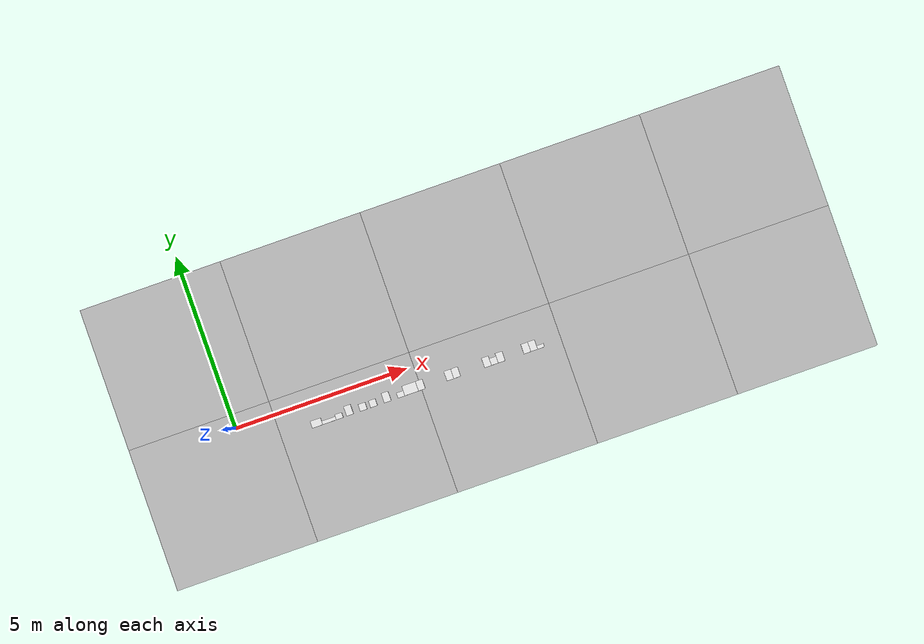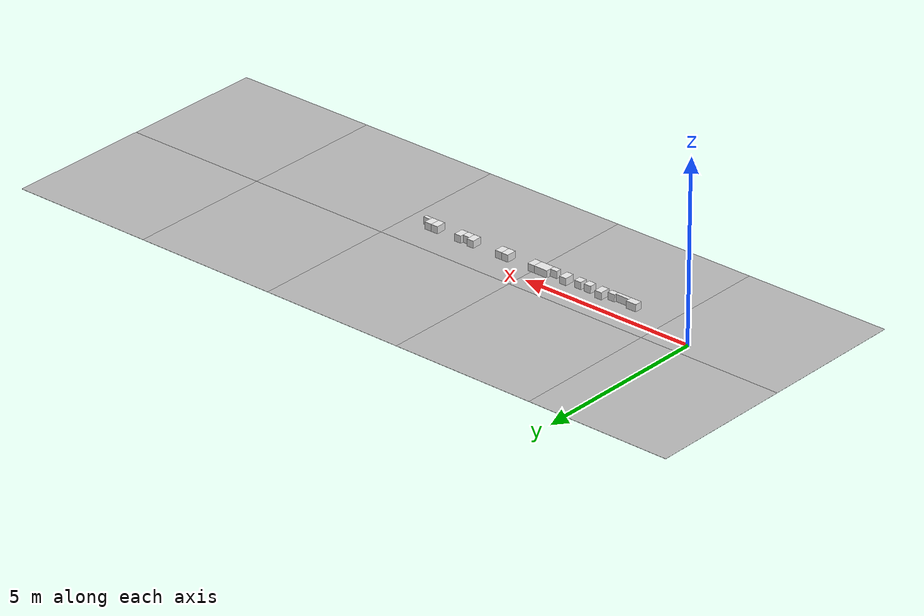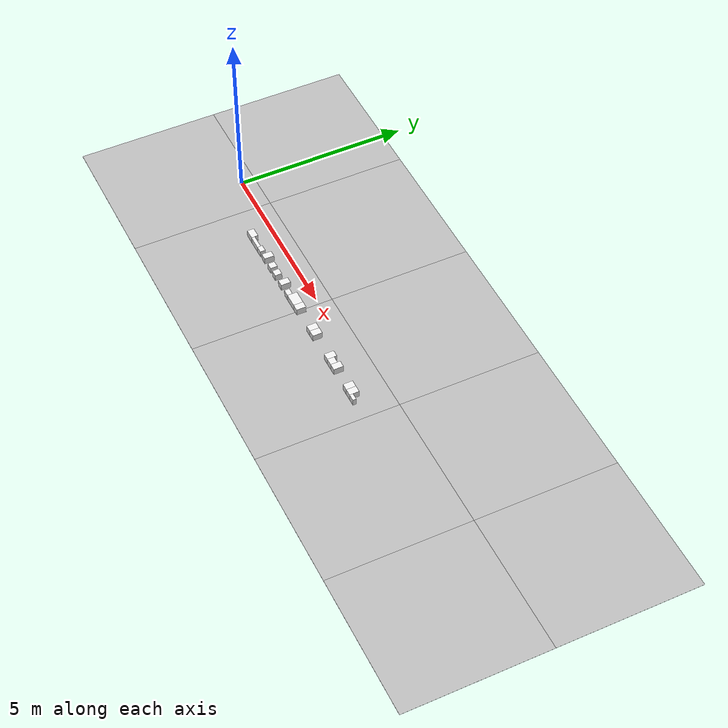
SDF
<sdf version='1.6'><world name='default'>
    <light name='sun_light' type='directional'>
      <pose frame=''>0 0 10 0 -0 0</pose>
      <diffuse>0.5 0.5 0.5 1</diffuse>
      <specular>0.1 0.1 0.1 1</specular>
      <direction>0.1 0.1 -0.9</direction>
      <attenuation>
        <range>20</range>
        <constant>0.5</constant>
        <linear>0.01</linear>
        <quadratic>0.001</quadratic>
      </attenuation>
      <cast_shadows>1</cast_shadows>
    </light>

    <model name='Tile/0-0'>
      <static>1</static>
      <link name='link'>
        <collision name='collision'>
          <geometry>
            <plane>
              <normal>0 0 1</normal>
              <size>4.096 4.096</size>
            </plane>
          </geometry>
          <surface>
            <friction>
              <ode>
                <mu>100</mu>
                <mu2>50</mu2>
              </ode>
              <torsional>
                <ode/>
              </torsional>
            </friction>
            <contact>
              <ode/>
            </contact>
            <bounce/>
          </surface>
          <max_contacts>10</max_contacts>
        </collision>
        <visual name='visual'>
          <cast_shadows>0</cast_shadows>
          <geometry>
            <plane>
              <normal>0 0 1</normal>
              <size>4.096 4.096</size>
            </plane>
          </geometry>
          <material>
            <script>
              <uri>file://materials/scripts</uri>
              <uri>file://materials/textures</uri>
              <name>Tile/aa44efc093d15b0d016b671cb8dad8b9b5925cd42bc6b331ef31decf4ba6863e</name>
            </script>
          </material>
        </visual>
        <self_collide>0</self_collide>
        <enable_wind>0</enable_wind>
        <kinematic>0</kinematic>
      </link>
      <pose frame=''>-0.952 -1.6520000000000001 0 0 -0 0</pose>
    </model>

    <model name='Tile/0-1'>
      <static>1</static>
      <link name='link'>
        <collision name='collision'>
          <geometry>
            <plane>
              <normal>0 0 1</normal>
              <size>4.096 4.096</size>
            </plane>
          </geometry>
          <surface>
            <friction>
              <ode>
                <mu>100</mu>
                <mu2>50</mu2>
              </ode>
              <torsional>
                <ode/>
              </torsional>
            </friction>
            <contact>
              <ode/>
            </contact>
            <bounce/>
          </surface>
          <max_contacts>10</max_contacts>
        </collision>
        <visual name='visual'>
          <cast_shadows>0</cast_shadows>
          <geometry>
            <plane>
              <normal>0 0 1</normal>
              <size>4.096 4.096</size>
            </plane>
          </geometry>
          <material>
            <script>
              <uri>file://materials/scripts</uri>
              <uri>file://materials/textures</uri>
              <name>Tile/6681b896b1587d54cb69aadeb5fb7247b4d6d500490292053e67105ac88ca889</name>
            </script>
          </material>
        </visual>
        <self_collide>0</self_collide>
        <enable_wind>0</enable_wind>
        <kinematic>0</kinematic>
      </link>
      <pose frame=''>-0.952 2.444 0 0 -0 0</pose>
    </model>

    <model name='Tile/1-0'>
      <static>1</static>
      <link name='link'>
        <collision name='collision'>
          <geometry>
            <plane>
              <normal>0 0 1</normal>
              <size>4.096 4.096</size>
            </plane>
          </geometry>
          <surface>
            <friction>
              <ode>
                <mu>100</mu>
                <mu2>50</mu2>
              </ode>
              <torsional>
                <ode/>
              </torsional>
            </friction>
            <contact>
              <ode/>
            </contact>
            <bounce/>
          </surface>
          <max_contacts>10</max_contacts>
        </collision>
        <visual name='visual'>
          <cast_shadows>0</cast_shadows>
          <geometry>
            <plane>
              <normal>0 0 1</normal>
              <size>4.096 4.096</size>
            </plane>
          </geometry>
          <material>
            <script>
              <uri>file://materials/scripts</uri>
              <uri>file://materials/textures</uri>
              <name>Tile/5519df0843ca2edcb0d4cc3d9bbf92a1ead79cd6f2c310dce87ee613d5277f1f</name>
            </script>
          </material>
        </visual>
        <self_collide>0</self_collide>
        <enable_wind>0</enable_wind>
        <kinematic>0</kinematic>
      </link>
      <pose frame=''>3.144 -1.6520000000000001 0 0 -0 0</pose>
    </model>

    <model name='Tile/1-1'>
      <static>1</static>
      <link name='link'>
        <collision name='collision'>
          <geometry>
            <plane>
              <normal>0 0 1</normal>
              <size>4.096 4.096</size>
            </plane>
          </geometry>
          <surface>
            <friction>
              <ode>
                <mu>100</mu>
                <mu2>50</mu2>
              </ode>
              <torsional>
                <ode/>
              </torsional>
            </friction>
            <contact>
              <ode/>
            </contact>
            <bounce/>
          </surface>
          <max_contacts>10</max_contacts>
        </collision>
        <visual name='visual'>
          <cast_shadows>0</cast_shadows>
          <geometry>
            <plane>
              <normal>0 0 1</normal>
              <size>4.096 4.096</size>
            </plane>
          </geometry>
          <material>
            <script>
              <uri>file://materials/scripts</uri>
              <uri>file://materials/textures</uri>
              <name>Tile/13957a6de1f2afce18d7f1f64dacc2f21295e26ccf498256b0e1a51002cd5706</name>
            </script>
          </material>
        </visual>
        <self_collide>0</self_collide>
        <enable_wind>0</enable_wind>
        <kinematic>0</kinematic>
      </link>
      <pose frame=''>3.144 2.444 0 0 -0 0</pose>
    </model>

    <model name='Tile/2-0'>
      <static>1</static>
      <link name='link'>
        <collision name='collision'>
          <geometry>
            <plane>
              <normal>0 0 1</normal>
              <size>4.096 4.096</size>
            </plane>
          </geometry>
          <surface>
            <friction>
              <ode>
                <mu>100</mu>
                <mu2>50</mu2>
              </ode>
              <torsional>
                <ode/>
              </torsional>
            </friction>
            <contact>
              <ode/>
            </contact>
            <bounce/>
          </surface>
          <max_contacts>10</max_contacts>
        </collision>
        <visual name='visual'>
          <cast_shadows>0</cast_shadows>
          <geometry>
            <plane>
              <normal>0 0 1</normal>
              <size>4.096 4.096</size>
            </plane>
          </geometry>
          <material>
            <script>
              <uri>file://materials/scripts</uri>
              <uri>file://materials/textures</uri>
              <name>Tile/8542aadd5de015428e820a9ee0e6fe3bbdfcf93ec4a8acf17711a93bd742b243</name>
            </script>
          </material>
        </visual>
        <self_collide>0</self_collide>
        <enable_wind>0</enable_wind>
        <kinematic>0</kinematic>
      </link>
      <pose frame=''>7.24 -1.6520000000000001 0 0 -0 0</pose>
    </model>

    <model name='Tile/2-1'>
      <static>1</static>
      <link name='link'>
        <collision name='collision'>
          <geometry>
            <plane>
              <normal>0 0 1</normal>
              <size>4.096 4.096</size>
            </plane>
          </geometry>
          <surface>
            <friction>
              <ode>
                <mu>100</mu>
                <mu2>50</mu2>
              </ode>
              <torsional>
                <ode/>
              </torsional>
            </friction>
            <contact>
              <ode/>
            </contact>
            <bounce/>
          </surface>
          <max_contacts>10</max_contacts>
        </collision>
        <visual name='visual'>
          <cast_shadows>0</cast_shadows>
          <geometry>
            <plane>
              <normal>0 0 1</normal>
              <size>4.096 4.096</size>
            </plane>
          </geometry>
          <material>
            <script>
              <uri>file://materials/scripts</uri>
              <uri>file://materials/textures</uri>
              <name>Tile/13957a6de1f2afce18d7f1f64dacc2f21295e26ccf498256b0e1a51002cd5706</name>
            </script>
          </material>
        </visual>
        <self_collide>0</self_collide>
        <enable_wind>0</enable_wind>
        <kinematic>0</kinematic>
      </link>
      <pose frame=''>7.24 2.444 0 0 -0 0</pose>
    </model>

    <model name='Tile/3-0'>
      <static>1</static>
      <link name='link'>
        <collision name='collision'>
          <geometry>
            <plane>
              <normal>0 0 1</normal>
              <size>4.096 4.096</size>
            </plane>
          </geometry>
          <surface>
            <friction>
              <ode>
                <mu>100</mu>
                <mu2>50</mu2>
              </ode>
              <torsional>
                <ode/>
              </torsional>
            </friction>
            <contact>
              <ode/>
            </contact>
            <bounce/>
          </surface>
          <max_contacts>10</max_contacts>
        </collision>
        <visual name='visual'>
          <cast_shadows>0</cast_shadows>
          <geometry>
            <plane>
              <normal>0 0 1</normal>
              <size>4.096 4.096</size>
            </plane>
          </geometry>
          <material>
            <script>
              <uri>file://materials/scripts</uri>
              <uri>file://materials/textures</uri>
              <name>Tile/abe61641e72e42510ec0c33382329821aa0ffdabd8bdd301795f6aacd2568930</name>
            </script>
          </material>
        </visual>
        <self_collide>0</self_collide>
        <enable_wind>0</enable_wind>
        <kinematic>0</kinematic>
      </link>
      <pose frame=''>11.336 -1.6520000000000001 0 0 -0 0</pose>
    </model>

    <model name='Tile/3-1'>
      <static>1</static>
      <link name='link'>
        <collision name='collision'>
          <geometry>
            <plane>
              <normal>0 0 1</normal>
              <size>4.096 4.096</size>
            </plane>
          </geometry>
          <surface>
            <friction>
              <ode>
                <mu>100</mu>
                <mu2>50</mu2>
              </ode>
              <torsional>
                <ode/>
              </torsional>
            </friction>
            <contact>
              <ode/>
            </contact>
            <bounce/>
          </surface>
          <max_contacts>10</max_contacts>
        </collision>
        <visual name='visual'>
          <cast_shadows>0</cast_shadows>
          <geometry>
            <plane>
              <normal>0 0 1</normal>
              <size>4.096 4.096</size>
            </plane>
          </geometry>
          <material>
            <script>
              <uri>file://materials/scripts</uri>
              <uri>file://materials/textures</uri>
              <name>Tile/9a638098c074a6a28d2b802bd76e24a7c94687fec106f022fc197313878202a5</name>
            </script>
          </material>
        </visual>
        <self_collide>0</self_collide>
        <enable_wind>0</enable_wind>
        <kinematic>0</kinematic>
      </link>
      <pose frame=''>11.336 2.444 0 0 -0 0</pose>
    </model>

    <model name='Tile/4-0'>
      <static>1</static>
      <link name='link'>
        <collision name='collision'>
          <geometry>
            <plane>
              <normal>0 0 1</normal>
              <size>4.096 4.096</size>
            </plane>
          </geometry>
          <surface>
            <friction>
              <ode>
                <mu>100</mu>
                <mu2>50</mu2>
              </ode>
              <torsional>
                <ode/>
              </torsional>
            </friction>
            <contact>
              <ode/>
            </contact>
            <bounce/>
          </surface>
          <max_contacts>10</max_contacts>
        </collision>
        <visual name='visual'>
          <cast_shadows>0</cast_shadows>
          <geometry>
            <plane>
              <normal>0 0 1</normal>
              <size>4.096 4.096</size>
            </plane>
          </geometry>
          <material>
            <script>
              <uri>file://materials/scripts</uri>
              <uri>file://materials/textures</uri>
              <name>Tile/5eab350b8220ac9944dbdfa4ac3288c7c17e24c3bf5df0dfcf6173d64dae00a1</name>
            </script>
          </material>
        </visual>
        <self_collide>0</self_collide>
        <enable_wind>0</enable_wind>
        <kinematic>0</kinematic>
      </link>
      <pose frame=''>15.431999999999999 -1.6520000000000001 0 0 -0 0</pose>
    </model>

    <model name='Tile/4-1'>
      <static>1</static>
      <link name='link'>
        <collision name='collision'>
          <geometry>
            <plane>
              <normal>0 0 1</normal>
              <size>4.096 4.096</size>
            </plane>
          </geometry>
          <surface>
            <friction>
              <ode>
                <mu>100</mu>
                <mu2>50</mu2>
              </ode>
              <torsional>
                <ode/>
              </torsional>
            </friction>
            <contact>
              <ode/>
            </contact>
            <bounce/>
          </surface>
          <max_contacts>10</max_contacts>
        </collision>
        <visual name='visual'>
          <cast_shadows>0</cast_shadows>
          <geometry>
            <plane>
              <normal>0 0 1</normal>
              <size>4.096 4.096</size>
            </plane>
          </geometry>
          <material>
            <script>
              <uri>file://materials/scripts</uri>
              <uri>file://materials/textures</uri>
              <name>Tile/5eab350b8220ac9944dbdfa4ac3288c7c17e24c3bf5df0dfcf6173d64dae00a1</name>
            </script>
          </material>
        </visual>
        <self_collide>0</self_collide>
        <enable_wind>0</enable_wind>
        <kinematic>0</kinematic>
      </link>
      <pose frame=''>15.431999999999999 2.444 0 0 -0 0</pose>
    </model>

    <model name='Obstacle/-5/0'>
      <pose frame=''>2.15 -0.6 0.1 0 0 -0.0</pose>
      <link name='link'>
        <inertial>
          <mass>10</mass>
          <inertia>
            <ixx>0.166667</ixx>
            <ixy>0</ixy>
            <ixz>0</ixz>
            <iyy>0.166667</iyy>
            <iyz>0</iyz>
            <izz>0.166667</izz>
          </inertia>
        </inertial>
        <collision name='collision'>
          <geometry>
            <box>
              <size>0.3 0.2 0.2</size>
            </box>
          </geometry>
          <max_contacts>10</max_contacts>
          <surface>
            <contact>
              <ode/>
            </contact>
            <bounce/>
            <friction>
              <torsional>
                <ode/>
              </torsional>
              <ode/>
            </friction>
          </surface>
        </collision>
        <visual name='visual'>
          <geometry>
            <box>
              <size>0.3 0.2 0.2</size>
            </box>
          </geometry>
          <material>
            <script>
              <name>Gazebo/White</name>
              <uri>file://media/materials/scripts/gazebo.material</uri>
            </script>
          </material>
        </visual>
        <self_collide>0</self_collide>
        <enable_wind>0</enable_wind>
        <kinematic>0</kinematic>
      </link>
    </model>

    <model name='Obstacle/-9/0'>
      <pose frame=''>2.5 -0.6499999999999999 0.1 0 0 -0.0</pose>
      <link name='link'>
        <inertial>
          <mass>10</mass>
          <inertia>
            <ixx>0.166667</ixx>
            <ixy>0</ixy>
            <ixz>0</ixz>
            <iyy>0.166667</iyy>
            <iyz>0</iyz>
            <izz>0.166667</izz>
          </inertia>
        </inertial>
        <collision name='collision'>
          <geometry>
            <box>
              <size>0.4 0.1 0.2</size>
            </box>
          </geometry>
          <max_contacts>10</max_contacts>
          <surface>
            <contact>
              <ode/>
            </contact>
            <bounce/>
            <friction>
              <torsional>
                <ode/>
              </torsional>
              <ode/>
            </friction>
          </surface>
        </collision>
        <visual name='visual'>
          <geometry>
            <box>
              <size>0.4 0.1 0.2</size>
            </box>
          </geometry>
          <material>
            <script>
              <name>Gazebo/White</name>
              <uri>file://media/materials/scripts/gazebo.material</uri>
            </script>
          </material>
        </visual>
        <self_collide>0</self_collide>
        <enable_wind>0</enable_wind>
        <kinematic>0</kinematic>
      </link>
    </model>

    <model name='Obstacle/-13/0'>
      <pose frame=''>2.8 -0.625 0.1 0 0 -0.0</pose>
      <link name='link'>
        <inertial>
          <mass>10</mass>
          <inertia>
            <ixx>0.166667</ixx>
            <ixy>0</ixy>
            <ixz>0</ixz>
            <iyy>0.166667</iyy>
            <iyz>0</iyz>
            <izz>0.166667</izz>
          </inertia>
        </inertial>
        <collision name='collision'>
          <geometry>
            <box>
              <size>0.2 0.15 0.2</size>
            </box>
          </geometry>
          <max_contacts>10</max_contacts>
          <surface>
            <contact>
              <ode/>
            </contact>
            <bounce/>
            <friction>
              <torsional>
                <ode/>
              </torsional>
              <ode/>
            </friction>
          </surface>
        </collision>
        <visual name='visual'>
          <geometry>
            <box>
              <size>0.2 0.15 0.2</size>
            </box>
          </geometry>
          <material>
            <script>
              <name>Gazebo/White</name>
              <uri>file://media/materials/scripts/gazebo.material</uri>
            </script>
          </material>
        </visual>
        <self_collide>0</self_collide>
        <enable_wind>0</enable_wind>
        <kinematic>0</kinematic>
      </link>
    </model>

    <model name='Obstacle/-20/0'>
      <pose frame=''>3.1 -0.5599999999999999 0.1 0 0 -0.0</pose>
      <link name='link'>
        <inertial>
          <mass>10</mass>
          <inertia>
            <ixx>0.166667</ixx>
            <ixy>0</ixy>
            <ixz>0</ixz>
            <iyy>0.166667</iyy>
            <iyz>0</iyz>
            <izz>0.166667</izz>
          </inertia>
        </inertial>
        <collision name='collision'>
          <geometry>
            <box>
              <size>0.2 0.28 0.2</size>
            </box>
          </geometry>
          <max_contacts>10</max_contacts>
          <surface>
            <contact>
              <ode/>
            </contact>
            <bounce/>
            <friction>
              <torsional>
                <ode/>
              </torsional>
              <ode/>
            </friction>
          </surface>
        </collision>
        <visual name='visual'>
          <geometry>
            <box>
              <size>0.2 0.28 0.2</size>
            </box>
          </geometry>
          <material>
            <script>
              <name>Gazebo/White</name>
              <uri>file://media/materials/scripts/gazebo.material</uri>
            </script>
          </material>
        </visual>
        <self_collide>0</self_collide>
        <enable_wind>0</enable_wind>
        <kinematic>0</kinematic>
      </link>
    </model>

    <model name='Obstacle/-27/0'>
      <pose frame=''>3.5000000000000004 -0.6 0.1 0 0 -0.0</pose>
      <link name='link'>
        <inertial>
          <mass>10</mass>
          <inertia>
            <ixx>0.166667</ixx>
            <ixy>0</ixy>
            <ixz>0</ixz>
            <iyy>0.166667</iyy>
            <iyz>0</iyz>
            <izz>0.166667</izz>
          </inertia>
        </inertial>
        <collision name='collision'>
          <geometry>
            <box>
              <size>0.2 0.2 0.2</size>
            </box>
          </geometry>
          <max_contacts>10</max_contacts>
          <surface>
            <contact>
              <ode/>
            </contact>
            <bounce/>
            <friction>
              <torsional>
                <ode/>
              </torsional>
              <ode/>
            </friction>
          </surface>
        </collision>
        <visual name='visual'>
          <geometry>
            <box>
              <size>0.2 0.2 0.2</size>
            </box>
          </geometry>
          <material>
            <script>
              <name>Gazebo/White</name>
              <uri>file://media/materials/scripts/gazebo.material</uri>
            </script>
          </material>
        </visual>
        <self_collide>0</self_collide>
        <enable_wind>0</enable_wind>
        <kinematic>0</kinematic>
      </link>
    </model>

    <model name='Obstacle/-34/0'>
      <pose frame=''>3.8000000000000007 -0.6 0.1 0 0 -0.0</pose>
      <link name='link'>
        <inertial>
          <mass>10</mass>
          <inertia>
            <ixx>0.166667</ixx>
            <ixy>0</ixy>
            <ixz>0</ixz>
            <iyy>0.166667</iyy>
            <iyz>0</iyz>
            <izz>0.166667</izz>
          </inertia>
        </inertial>
        <collision name='collision'>
          <geometry>
            <box>
              <size>0.2 0.2 0.2</size>
            </box>
          </geometry>
          <max_contacts>10</max_contacts>
          <surface>
            <contact>
              <ode/>
            </contact>
            <bounce/>
            <friction>
              <torsional>
                <ode/>
              </torsional>
              <ode/>
            </friction>
          </surface>
        </collision>
        <visual name='visual'>
          <geometry>
            <box>
              <size>0.2 0.2 0.2</size>
            </box>
          </geometry>
          <material>
            <script>
              <name>Gazebo/White</name>
              <uri>file://media/materials/scripts/gazebo.material</uri>
            </script>
          </material>
        </visual>
        <self_collide>0</self_collide>
        <enable_wind>0</enable_wind>
        <kinematic>0</kinematic>
      </link>
    </model>

    <model name='Obstacle/-41/0'>
      <pose frame=''>4.2 -0.5599999999999999 0.1 0 0 -0.0</pose>
      <link name='link'>
        <inertial>
          <mass>10</mass>
          <inertia>
            <ixx>0.166667</ixx>
            <ixy>0</ixy>
            <ixz>0</ixz>
            <iyy>0.166667</iyy>
            <iyz>0</iyz>
            <izz>0.166667</izz>
          </inertia>
        </inertial>
        <collision name='collision'>
          <geometry>
            <box>
              <size>0.2 0.28 0.2</size>
            </box>
          </geometry>
          <max_contacts>10</max_contacts>
          <surface>
            <contact>
              <ode/>
            </contact>
            <bounce/>
            <friction>
              <torsional>
                <ode/>
              </torsional>
              <ode/>
            </friction>
          </surface>
        </collision>
        <visual name='visual'>
          <geometry>
            <box>
              <size>0.2 0.28 0.2</size>
            </box>
          </geometry>
          <material>
            <script>
              <name>Gazebo/White</name>
              <uri>file://media/materials/scripts/gazebo.material</uri>
            </script>
          </material>
        </visual>
        <self_collide>0</self_collide>
        <enable_wind>0</enable_wind>
        <kinematic>0</kinematic>
      </link>
    </model>

    <model name='Obstacle/-48/0'>
      <pose frame=''>4.6000000000000005 -0.625 0.1 0 0 -0.0</pose>
      <link name='link'>
        <inertial>
          <mass>10</mass>
          <inertia>
            <ixx>0.166667</ixx>
            <ixy>0</ixy>
            <ixz>0</ixz>
            <iyy>0.166667</iyy>
            <iyz>0</iyz>
            <izz>0.166667</izz>
          </inertia>
        </inertial>
        <collision name='collision'>
          <geometry>
            <box>
              <size>0.2 0.15 0.2</size>
            </box>
          </geometry>
          <max_contacts>10</max_contacts>
          <surface>
            <contact>
              <ode/>
            </contact>
            <bounce/>
            <friction>
              <torsional>
                <ode/>
              </torsional>
              <ode/>
            </friction>
          </surface>
        </collision>
        <visual name='visual'>
          <geometry>
            <box>
              <size>0.2 0.15 0.2</size>
            </box>
          </geometry>
          <material>
            <script>
              <name>Gazebo/White</name>
              <uri>file://media/materials/scripts/gazebo.material</uri>
            </script>
          </material>
        </visual>
        <self_collide>0</self_collide>
        <enable_wind>0</enable_wind>
        <kinematic>0</kinematic>
      </link>
    </model>

    <model name='Obstacle/-52/0'>
      <pose frame=''>4.900000000000001 -0.5599999999999999 0.1 0 0 -0.0</pose>
      <link name='link'>
        <inertial>
          <mass>10</mass>
          <inertia>
            <ixx>0.166667</ixx>
            <ixy>0</ixy>
            <ixz>0</ixz>
            <iyy>0.166667</iyy>
            <iyz>0</iyz>
            <izz>0.166667</izz>
          </inertia>
        </inertial>
        <collision name='collision'>
          <geometry>
            <box>
              <size>0.4 0.28 0.2</size>
            </box>
          </geometry>
          <max_contacts>10</max_contacts>
          <surface>
            <contact>
              <ode/>
            </contact>
            <bounce/>
            <friction>
              <torsional>
                <ode/>
              </torsional>
              <ode/>
            </friction>
          </surface>
        </collision>
        <visual name='visual'>
          <geometry>
            <box>
              <size>0.4 0.28 0.2</size>
            </box>
          </geometry>
          <material>
            <script>
              <name>Gazebo/White</name>
              <uri>file://media/materials/scripts/gazebo.material</uri>
            </script>
          </material>
        </visual>
        <self_collide>0</self_collide>
        <enable_wind>0</enable_wind>
        <kinematic>0</kinematic>
      </link>
    </model>

    <model name='Obstacle/-56/0'>
      <pose frame=''>5.200000000000001 -0.5599999999999999 0.1 0 0 -0.0</pose>
      <link name='link'>
        <inertial>
          <mass>10</mass>
          <inertia>
            <ixx>0.166667</ixx>
            <ixy>0</ixy>
            <ixz>0</ixz>
            <iyy>0.166667</iyy>
            <iyz>0</iyz>
            <izz>0.166667</izz>
          </inertia>
        </inertial>
        <collision name='collision'>
          <geometry>
            <box>
              <size>0.2 0.28 0.2</size>
            </box>
          </geometry>
          <max_contacts>10</max_contacts>
          <surface>
            <contact>
              <ode/>
            </contact>
            <bounce/>
            <friction>
              <torsional>
                <ode/>
              </torsional>
              <ode/>
            </friction>
          </surface>
        </collision>
        <visual name='visual'>
          <geometry>
            <box>
              <size>0.2 0.28 0.2</size>
            </box>
          </geometry>
          <material>
            <script>
              <name>Gazebo/White</name>
              <uri>file://media/materials/scripts/gazebo.material</uri>
            </script>
          </material>
        </visual>
        <self_collide>0</self_collide>
        <enable_wind>0</enable_wind>
        <kinematic>0</kinematic>
      </link>
    </model>

    <model name='Obstacle/-63/0'>
      <pose frame=''>6.030000000000001 -0.5599999999999999 0.1 0 0 -0.0</pose>
      <link name='link'>
        <inertial>
          <mass>10</mass>
          <inertia>
            <ixx>0.166667</ixx>
            <ixy>0</ixy>
            <ixz>0</ixz>
            <iyy>0.166667</iyy>
            <iyz>0</iyz>
            <izz>0.166667</izz>
          </inertia>
        </inertial>
        <collision name='collision'>
          <geometry>
            <box>
              <size>0.2 0.28 0.2</size>
            </box>
          </geometry>
          <max_contacts>10</max_contacts>
          <surface>
            <contact>
              <ode/>
            </contact>
            <bounce/>
            <friction>
              <torsional>
                <ode/>
              </torsional>
              <ode/>
            </friction>
          </surface>
        </collision>
        <visual name='visual'>
          <geometry>
            <box>
              <size>0.2 0.28 0.2</size>
            </box>
          </geometry>
          <material>
            <script>
              <name>Gazebo/White</name>
              <uri>file://media/materials/scripts/gazebo.material</uri>
            </script>
          </material>
        </visual>
        <self_collide>0</self_collide>
        <enable_wind>0</enable_wind>
        <kinematic>0</kinematic>
      </link>
    </model>

    <model name='Obstacle/-67/0'>
      <pose frame=''>6.230000000000001 -0.5599999999999999 0.1 0 0 -0.0</pose>
      <link name='link'>
        <inertial>
          <mass>10</mass>
          <inertia>
            <ixx>0.166667</ixx>
            <ixy>0</ixy>
            <ixz>0</ixz>
            <iyy>0.166667</iyy>
            <iyz>0</iyz>
            <izz>0.166667</izz>
          </inertia>
        </inertial>
        <collision name='collision'>
          <geometry>
            <box>
              <size>0.2 0.28 0.2</size>
            </box>
          </geometry>
          <max_contacts>10</max_contacts>
          <surface>
            <contact>
              <ode/>
            </contact>
            <bounce/>
            <friction>
              <torsional>
                <ode/>
              </torsional>
              <ode/>
            </friction>
          </surface>
        </collision>
        <visual name='visual'>
          <geometry>
            <box>
              <size>0.2 0.28 0.2</size>
            </box>
          </geometry>
          <material>
            <script>
              <name>Gazebo/White</name>
              <uri>file://media/materials/scripts/gazebo.material</uri>
            </script>
          </material>
        </visual>
        <self_collide>0</self_collide>
        <enable_wind>0</enable_wind>
        <kinematic>0</kinematic>
      </link>
    </model>

    <model name='Obstacle/-74/0'>
      <pose frame=''>7.130000000000002 -0.5599999999999999 0.1 0 0 -0.0</pose>
      <link name='link'>
        <inertial>
          <mass>10</mass>
          <inertia>
            <ixx>0.166667</ixx>
            <ixy>0</ixy>
            <ixz>0</ixz>
            <iyy>0.166667</iyy>
            <iyz>0</iyz>
            <izz>0.166667</izz>
          </inertia>
        </inertial>
        <collision name='collision'>
          <geometry>
            <box>
              <size>0.2 0.28 0.2</size>
            </box>
          </geometry>
          <max_contacts>10</max_contacts>
          <surface>
            <contact>
              <ode/>
            </contact>
            <bounce/>
            <friction>
              <torsional>
                <ode/>
              </torsional>
              <ode/>
            </friction>
          </surface>
        </collision>
        <visual name='visual'>
          <geometry>
            <box>
              <size>0.2 0.28 0.2</size>
            </box>
          </geometry>
          <material>
            <script>
              <name>Gazebo/White</name>
              <uri>file://media/materials/scripts/gazebo.material</uri>
            </script>
          </material>
        </visual>
        <self_collide>0</self_collide>
        <enable_wind>0</enable_wind>
        <kinematic>0</kinematic>
      </link>
    </model>

    <model name='Obstacle/-78/0'>
      <pose frame=''>7.330000000000002 -0.6 0.1 0 0 -0.0</pose>
      <link name='link'>
        <inertial>
          <mass>10</mass>
          <inertia>
            <ixx>0.166667</ixx>
            <ixy>0</ixy>
            <ixz>0</ixz>
            <iyy>0.166667</iyy>
            <iyz>0</iyz>
            <izz>0.166667</izz>
          </inertia>
        </inertial>
        <collision name='collision'>
          <geometry>
            <box>
              <size>0.2 0.2 0.2</size>
            </box>
          </geometry>
          <max_contacts>10</max_contacts>
          <surface>
            <contact>
              <ode/>
            </contact>
            <bounce/>
            <friction>
              <torsional>
                <ode/>
              </torsional>
              <ode/>
            </friction>
          </surface>
        </collision>
        <visual name='visual'>
          <geometry>
            <box>
              <size>0.2 0.2 0.2</size>
            </box>
          </geometry>
          <material>
            <script>
              <name>Gazebo/White</name>
              <uri>file://media/materials/scripts/gazebo.material</uri>
            </script>
          </material>
        </visual>
        <self_collide>0</self_collide>
        <enable_wind>0</enable_wind>
        <kinematic>0</kinematic>
      </link>
    </model>

    <model name='Obstacle/-82/0'>
      <pose frame=''>7.530000000000002 -0.5599999999999999 0.1 0 0 -0.0</pose>
      <link name='link'>
        <inertial>
          <mass>10</mass>
          <inertia>
            <ixx>0.166667</ixx>
            <ixy>0</ixy>
            <ixz>0</ixz>
            <iyy>0.166667</iyy>
            <iyz>0</iyz>
            <izz>0.166667</izz>
          </inertia>
        </inertial>
        <collision name='collision'>
          <geometry>
            <box>
              <size>0.2 0.28 0.2</size>
            </box>
          </geometry>
          <max_contacts>10</max_contacts>
          <surface>
            <contact>
              <ode/>
            </contact>
            <bounce/>
            <friction>
              <torsional>
                <ode/>
              </torsional>
              <ode/>
            </friction>
          </surface>
        </collision>
        <visual name='visual'>
          <geometry>
            <box>
              <size>0.2 0.28 0.2</size>
            </box>
          </geometry>
          <material>
            <script>
              <name>Gazebo/White</name>
              <uri>file://media/materials/scripts/gazebo.material</uri>
            </script>
          </material>
        </visual>
        <self_collide>0</self_collide>
        <enable_wind>0</enable_wind>
        <kinematic>0</kinematic>
      </link>
    </model>

    <model name='Obstacle/-89/0'>
      <pose frame=''>8.280000000000003 -0.5599999999999999 0.1 0 0 -0.0</pose>
      <link name='link'>
        <inertial>
          <mass>10</mass>
          <inertia>
            <ixx>0.166667</ixx>
            <ixy>0</ixy>
            <ixz>0</ixz>
            <iyy>0.166667</iyy>
            <iyz>0</iyz>
            <izz>0.166667</izz>
          </inertia>
        </inertial>
        <collision name='collision'>
          <geometry>
            <box>
              <size>0.2 0.28 0.2</size>
            </box>
          </geometry>
          <max_contacts>10</max_contacts>
          <surface>
            <contact>
              <ode/>
            </contact>
            <bounce/>
            <friction>
              <torsional>
                <ode/>
              </torsional>
              <ode/>
            </friction>
          </surface>
        </collision>
        <visual name='visual'>
          <geometry>
            <box>
              <size>0.2 0.28 0.2</size>
            </box>
          </geometry>
          <material>
            <script>
              <name>Gazebo/White</name>
              <uri>file://media/materials/scripts/gazebo.material</uri>
            </script>
          </material>
        </visual>
        <self_collide>0</self_collide>
        <enable_wind>0</enable_wind>
        <kinematic>0</kinematic>
      </link>
    </model>

    <model name='Obstacle/-93/0'>
      <pose frame=''>8.480000000000002 -0.5599999999999999 0.1 0 0 -0.0</pose>
      <link name='link'>
        <inertial>
          <mass>10</mass>
          <inertia>
            <ixx>0.166667</ixx>
            <ixy>0</ixy>
            <ixz>0</ixz>
            <iyy>0.166667</iyy>
            <iyz>0</iyz>
            <izz>0.166667</izz>
          </inertia>
        </inertial>
        <collision name='collision'>
          <geometry>
            <box>
              <size>0.2 0.28 0.2</size>
            </box>
          </geometry>
          <max_contacts>10</max_contacts>
          <surface>
            <contact>
              <ode/>
            </contact>
            <bounce/>
            <friction>
              <torsional>
                <ode/>
              </torsional>
              <ode/>
            </friction>
          </surface>
        </collision>
        <visual name='visual'>
          <geometry>
            <box>
              <size>0.2 0.28 0.2</size>
            </box>
          </geometry>
          <material>
            <script>
              <name>Gazebo/White</name>
              <uri>file://media/materials/scripts/gazebo.material</uri>
            </script>
          </material>
        </visual>
        <self_collide>0</self_collide>
        <enable_wind>0</enable_wind>
        <kinematic>0</kinematic>
      </link>
    </model>

    <model name='Obstacle/-97/0'>
      <pose frame=''>8.680000000000001 -0.6499999999999999 0.1 0 0 -0.0</pose>
      <link name='link'>
        <inertial>
          <mass>10</mass>
          <inertia>
            <ixx>0.166667</ixx>
            <ixy>0</ixy>
            <ixz>0</ixz>
            <iyy>0.166667</iyy>
            <iyz>0</iyz>
            <izz>0.166667</izz>
          </inertia>
        </inertial>
        <collision name='collision'>
          <geometry>
            <box>
              <size>0.2 0.1 0.2</size>
            </box>
          </geometry>
          <max_contacts>10</max_contacts>
          <surface>
            <contact>
              <ode/>
            </contact>
            <bounce/>
            <friction>
              <torsional>
                <ode/>
              </torsional>
              <ode/>
            </friction>
          </surface>
        </collision>
        <visual name='visual'>
          <geometry>
            <box>
              <size>0.2 0.1 0.2</size>
            </box>
          </geometry>
          <material>
            <script>
              <name>Gazebo/White</name>
              <uri>file://media/materials/scripts/gazebo.material</uri>
            </script>
          </material>
        </visual>
        <self_collide>0</self_collide>
        <enable_wind>0</enable_wind>
        <kinematic>0</kinematic>
      </link>
    </model>
    </world></sdf>
